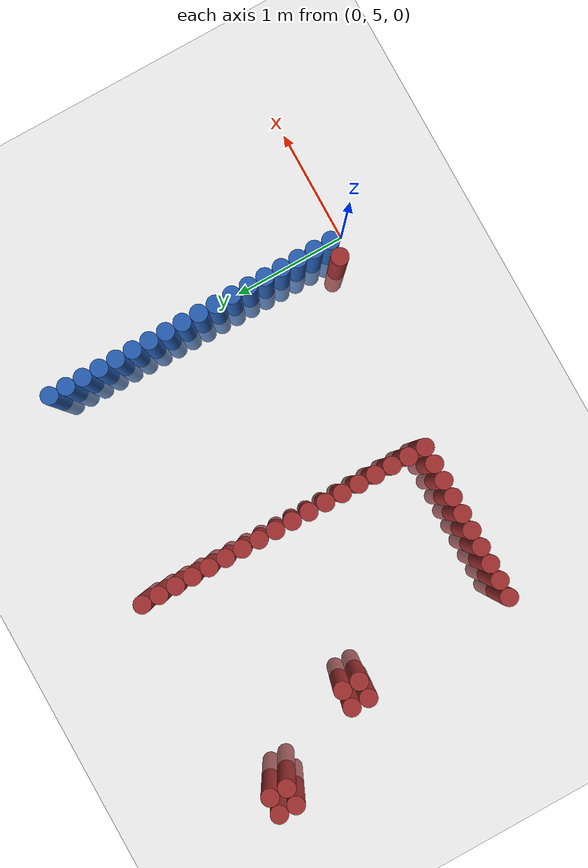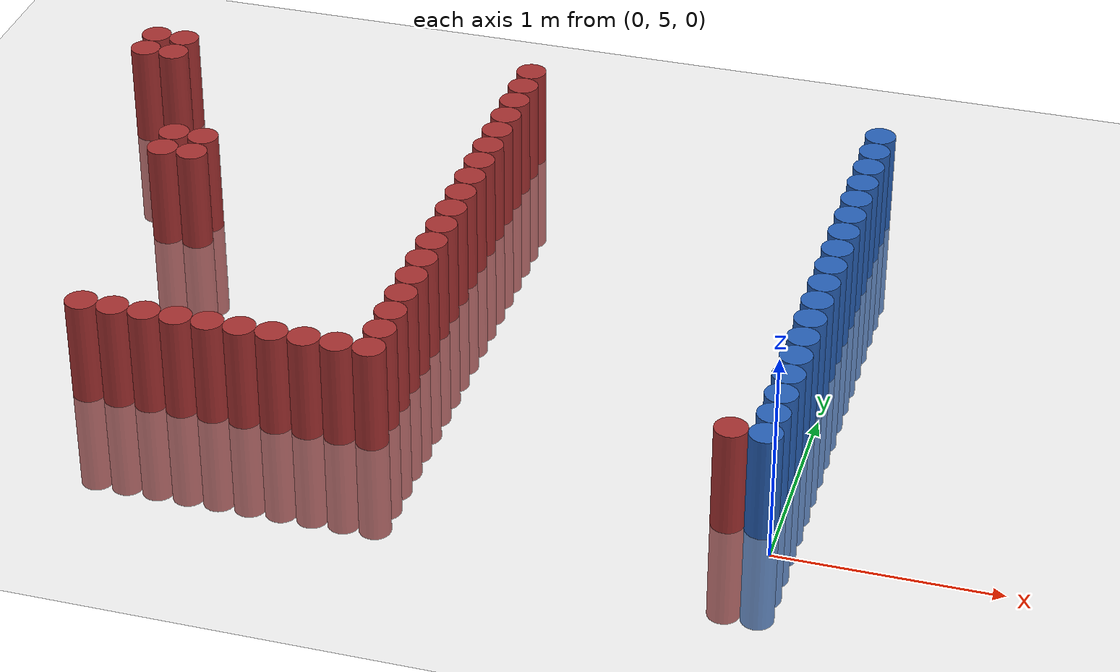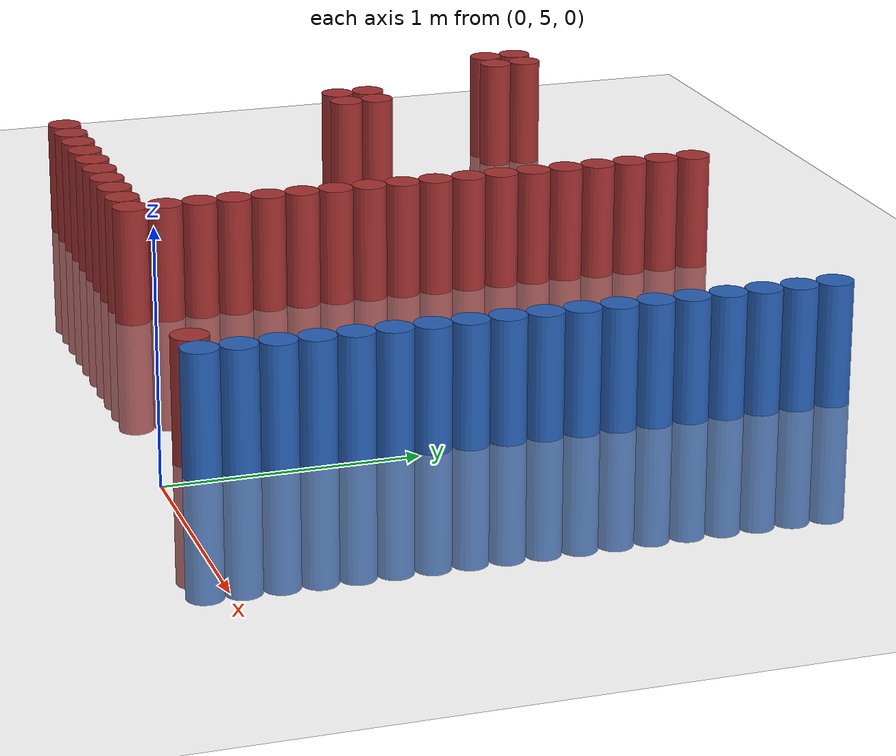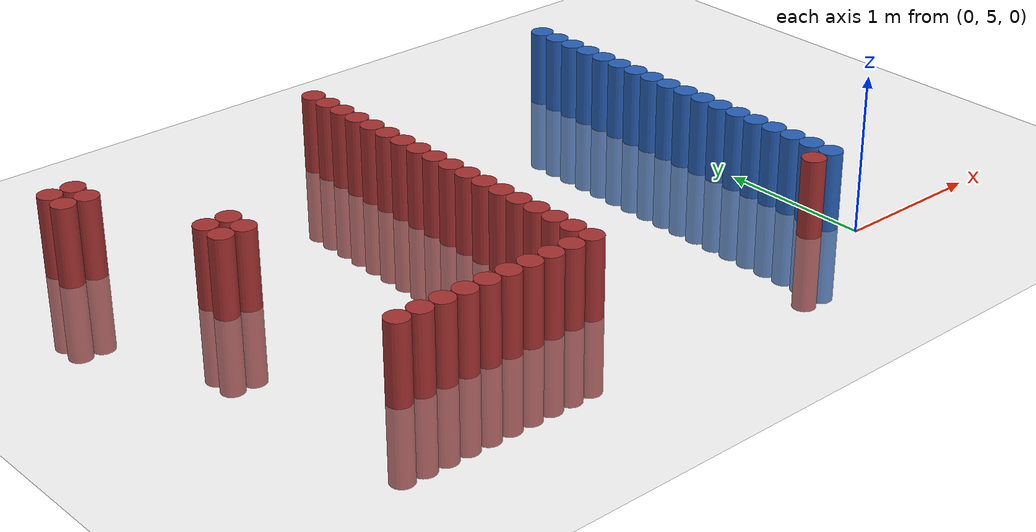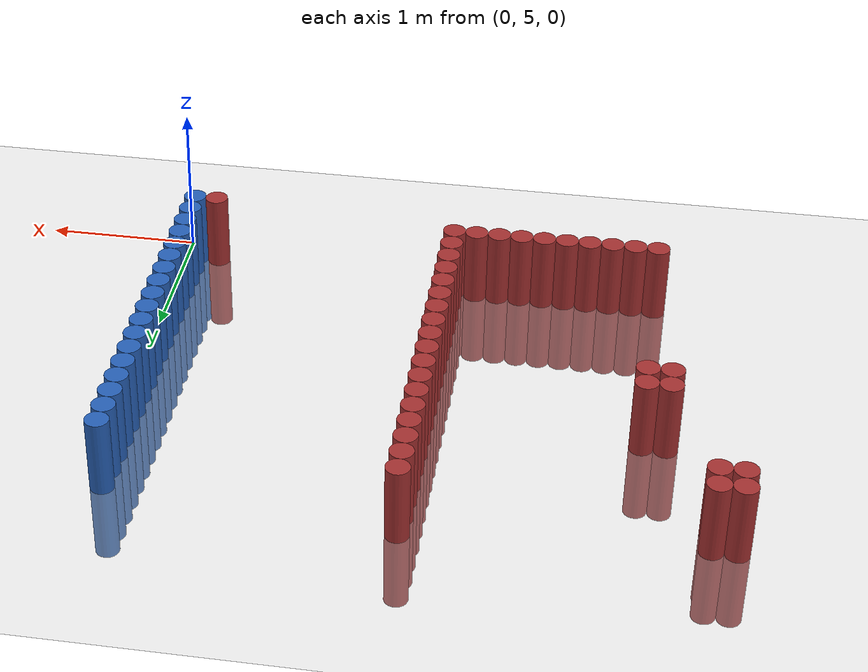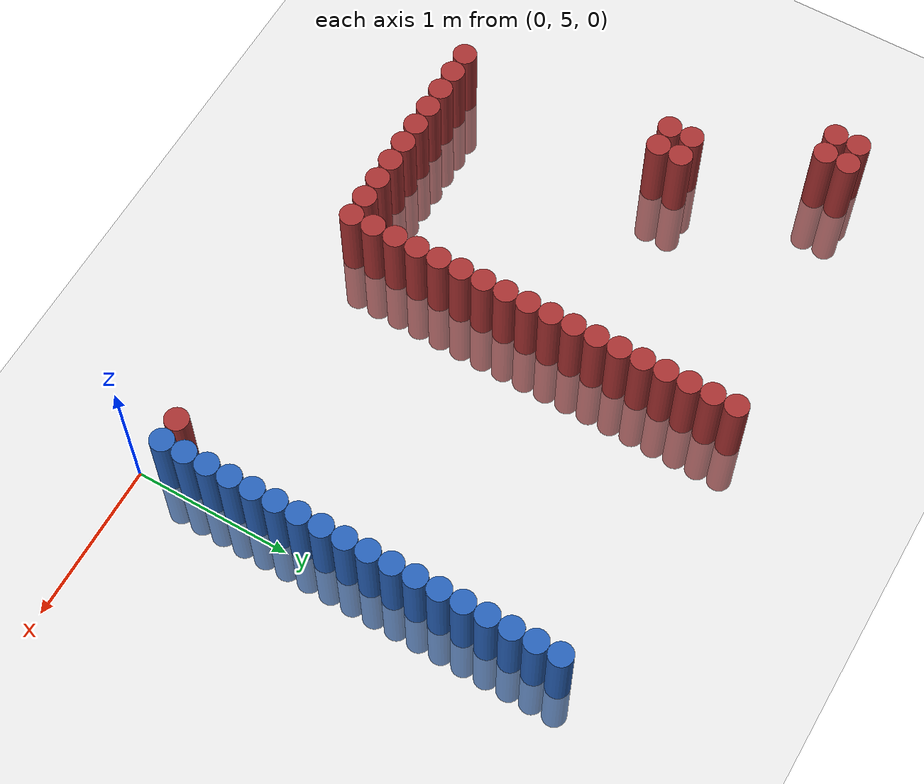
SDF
<sdf version="1.6">
 <world name="default">
  <model name="ground_plane">
   <static>1</static>
   <link name="link">
    <collision name="collision">
     <geometry><plane><normal>0 0 1</normal><size>100 100</size></plane></geometry>
     <surface><friction><ode><mu>100</mu><mu2>50</mu2></ode></friction></surface>
    </collision>
    <visual name="visual">
     <cast_shadows>0</cast_shadows>
     <geometry><plane><normal>0 0 1</normal><size>100 100</size></plane></geometry>
     <material>
      <script><uri>file://media/materials/scripts/gazebo.material</uri><name>Gazebo/Grey</name></script>
     </material>
    </visual>
   </link>
  </model>
  <model name="unit_cylinder_251">
   <static>1</static>
   <pose>-3.825000 7.575000 0.000000 0.000000 0.000000 0.000000</pose>
   <link name="link">
    <inertial>
     <mass>1</mass>
     <inertia><ixx>0.145833</ixx><ixy>0</ixy><ixz>0</ixz><iyy>0.145833</iyy><iyz>0</iyz><izz>0.125</izz></inertia>
    </inertial>
    <collision name="collision">
     <geometry><cylinder><radius>0.075000</radius><length>1</length></cylinder></geometry>
    </collision>
    <visual name="visual">
     <geometry><cylinder><radius>0.075000</radius><length>1</length></cylinder></geometry>
     <material>
      <ambient>0.648000 0.192000 0.192000 1</ambient>
      <diffuse>0.648000 0.192000 0.192000 1</diffuse>
     </material>
     <material>
      <script><name>Gazebo/Grey</name><uri>file://media/materials/scripts/gazebo.material</uri></script>
     </material>
    </visual>
   </link>
  </model>
  <model name="unit_cylinder_252">
   <static>1</static>
   <pose>-3.825000 7.725000 0.000000 0.000000 0.000000 0.000000</pose>
   <link name="link">
    <inertial>
     <mass>1</mass>
     <inertia><ixx>0.145833</ixx><ixy>0</ixy><ixz>0</ixz><iyy>0.145833</iyy><iyz>0</iyz><izz>0.125</izz></inertia>
    </inertial>
    <collision name="collision">
     <geometry><cylinder><radius>0.075000</radius><length>1</length></cylinder></geometry>
    </collision>
    <visual name="visual">
     <geometry><cylinder><radius>0.075000</radius><length>1</length></cylinder></geometry>
     <material>
      <ambient>0.648000 0.192000 0.192000 1</ambient>
      <diffuse>0.648000 0.192000 0.192000 1</diffuse>
     </material>
     <material>
      <script><name>Gazebo/Grey</name><uri>file://media/materials/scripts/gazebo.material</uri></script>
     </material>
    </visual>
   </link>
  </model>
  <model name="unit_cylinder_259">
   <static>1</static>
   <pose>-3.675000 7.575000 0.000000 0.000000 0.000000 0.000000</pose>
   <link name="link">
    <inertial>
     <mass>1</mass>
     <inertia><ixx>0.145833</ixx><ixy>0</ixy><ixz>0</ixz><iyy>0.145833</iyy><iyz>0</iyz><izz>0.125</izz></inertia>
    </inertial>
    <collision name="collision">
     <geometry><cylinder><radius>0.075000</radius><length>1</length></cylinder></geometry>
    </collision>
    <visual name="visual">
     <geometry><cylinder><radius>0.075000</radius><length>1</length></cylinder></geometry>
     <material>
      <ambient>0.648000 0.192000 0.192000 1</ambient>
      <diffuse>0.648000 0.192000 0.192000 1</diffuse>
     </material>
     <material>
      <script><name>Gazebo/Grey</name><uri>file://media/materials/scripts/gazebo.material</uri></script>
     </material>
    </visual>
   </link>
  </model>
  <model name="unit_cylinder_260">
   <static>1</static>
   <pose>-3.675000 7.725000 0.000000 0.000000 0.000000 0.000000</pose>
   <link name="link">
    <inertial>
     <mass>1</mass>
     <inertia><ixx>0.145833</ixx><ixy>0</ixy><ixz>0</ixz><iyy>0.145833</iyy><iyz>0</iyz><izz>0.125</izz></inertia>
    </inertial>
    <collision name="collision">
     <geometry><cylinder><radius>0.075000</radius><length>1</length></cylinder></geometry>
    </collision>
    <visual name="visual">
     <geometry><cylinder><radius>0.075000</radius><length>1</length></cylinder></geometry>
     <material>
      <ambient>0.648000 0.192000 0.192000 1</ambient>
      <diffuse>0.648000 0.192000 0.192000 1</diffuse>
     </material>
     <material>
      <script><name>Gazebo/Grey</name><uri>file://media/materials/scripts/gazebo.material</uri></script>
     </material>
    </visual>
   </link>
  </model>
  <model name="unit_cylinder_269">
   <static>1</static>
   <pose>-3.375000 6.675000 0.000000 0.000000 0.000000 0.000000</pose>
   <link name="link">
    <inertial>
     <mass>1</mass>
     <inertia><ixx>0.145833</ixx><ixy>0</ixy><ixz>0</ixz><iyy>0.145833</iyy><iyz>0</iyz><izz>0.125</izz></inertia>
    </inertial>
    <collision name="collision">
     <geometry><cylinder><radius>0.075000</radius><length>1</length></cylinder></geometry>
    </collision>
    <visual name="visual">
     <geometry><cylinder><radius>0.075000</radius><length>1</length></cylinder></geometry>
     <material>
      <ambient>0.648000 0.192000 0.192000 1</ambient>
      <diffuse>0.648000 0.192000 0.192000 1</diffuse>
     </material>
     <material>
      <script><name>Gazebo/Grey</name><uri>file://media/materials/scripts/gazebo.material</uri></script>
     </material>
    </visual>
   </link>
  </model>
  <model name="unit_cylinder_270">
   <static>1</static>
   <pose>-3.375000 6.825000 0.000000 0.000000 0.000000 0.000000</pose>
   <link name="link">
    <inertial>
     <mass>1</mass>
     <inertia><ixx>0.145833</ixx><ixy>0</ixy><ixz>0</ixz><iyy>0.145833</iyy><iyz>0</iyz><izz>0.125</izz></inertia>
    </inertial>
    <collision name="collision">
     <geometry><cylinder><radius>0.075000</radius><length>1</length></cylinder></geometry>
    </collision>
    <visual name="visual">
     <geometry><cylinder><radius>0.075000</radius><length>1</length></cylinder></geometry>
     <material>
      <ambient>0.648000 0.192000 0.192000 1</ambient>
      <diffuse>0.648000 0.192000 0.192000 1</diffuse>
     </material>
     <material>
      <script><name>Gazebo/Grey</name><uri>file://media/materials/scripts/gazebo.material</uri></script>
     </material>
    </visual>
   </link>
  </model>
  <model name="unit_cylinder_274">
   <static>1</static>
   <pose>-3.225000 5.325000 0.000000 0.000000 0.000000 0.000000</pose>
   <link name="link">
    <inertial>
     <mass>1</mass>
     <inertia><ixx>0.145833</ixx><ixy>0</ixy><ixz>0</ixz><iyy>0.145833</iyy><iyz>0</iyz><izz>0.125</izz></inertia>
    </inertial>
    <collision name="collision">
     <geometry><cylinder><radius>0.075000</radius><length>1</length></cylinder></geometry>
    </collision>
    <visual name="visual">
     <geometry><cylinder><radius>0.075000</radius><length>1</length></cylinder></geometry>
     <material>
      <ambient>0.648000 0.192000 0.192000 1</ambient>
      <diffuse>0.648000 0.192000 0.192000 1</diffuse>
     </material>
     <material>
      <script><name>Gazebo/Grey</name><uri>file://media/materials/scripts/gazebo.material</uri></script>
     </material>
    </visual>
   </link>
  </model>
  <model name="unit_cylinder_275">
   <static>1</static>
   <pose>-3.225000 6.675000 0.000000 0.000000 0.000000 0.000000</pose>
   <link name="link">
    <inertial>
     <mass>1</mass>
     <inertia><ixx>0.145833</ixx><ixy>0</ixy><ixz>0</ixz><iyy>0.145833</iyy><iyz>0</iyz><izz>0.125</izz></inertia>
    </inertial>
    <collision name="collision">
     <geometry><cylinder><radius>0.075000</radius><length>1</length></cylinder></geometry>
    </collision>
    <visual name="visual">
     <geometry><cylinder><radius>0.075000</radius><length>1</length></cylinder></geometry>
     <material>
      <ambient>0.648000 0.192000 0.192000 1</ambient>
      <diffuse>0.648000 0.192000 0.192000 1</diffuse>
     </material>
     <material>
      <script><name>Gazebo/Grey</name><uri>file://media/materials/scripts/gazebo.material</uri></script>
     </material>
    </visual>
   </link>
  </model>
  <model name="unit_cylinder_276">
   <static>1</static>
   <pose>-3.225000 6.825000 0.000000 0.000000 0.000000 0.000000</pose>
   <link name="link">
    <inertial>
     <mass>1</mass>
     <inertia><ixx>0.145833</ixx><ixy>0</ixy><ixz>0</ixz><iyy>0.145833</iyy><iyz>0</iyz><izz>0.125</izz></inertia>
    </inertial>
    <collision name="collision">
     <geometry><cylinder><radius>0.075000</radius><length>1</length></cylinder></geometry>
    </collision>
    <visual name="visual">
     <geometry><cylinder><radius>0.075000</radius><length>1</length></cylinder></geometry>
     <material>
      <ambient>0.648000 0.192000 0.192000 1</ambient>
      <diffuse>0.648000 0.192000 0.192000 1</diffuse>
     </material>
     <material>
      <script><name>Gazebo/Grey</name><uri>file://media/materials/scripts/gazebo.material</uri></script>
     </material>
    </visual>
   </link>
  </model>
  <model name="unit_cylinder_278">
   <static>1</static>
   <pose>-3.075000 5.325000 0.000000 0.000000 0.000000 0.000000</pose>
   <link name="link">
    <inertial>
     <mass>1</mass>
     <inertia><ixx>0.145833</ixx><ixy>0</ixy><ixz>0</ixz><iyy>0.145833</iyy><iyz>0</iyz><izz>0.125</izz></inertia>
    </inertial>
    <collision name="collision">
     <geometry><cylinder><radius>0.075000</radius><length>1</length></cylinder></geometry>
    </collision>
    <visual name="visual">
     <geometry><cylinder><radius>0.075000</radius><length>1</length></cylinder></geometry>
     <material>
      <ambient>0.648000 0.192000 0.192000 1</ambient>
      <diffuse>0.648000 0.192000 0.192000 1</diffuse>
     </material>
     <material>
      <script><name>Gazebo/Grey</name><uri>file://media/materials/scripts/gazebo.material</uri></script>
     </material>
    </visual>
   </link>
  </model>
  <model name="unit_cylinder_280">
   <static>1</static>
   <pose>-2.925000 5.325000 0.000000 0.000000 0.000000 0.000000</pose>
   <link name="link">
    <inertial>
     <mass>1</mass>
     <inertia><ixx>0.145833</ixx><ixy>0</ixy><ixz>0</ixz><iyy>0.145833</iyy><iyz>0</iyz><izz>0.125</izz></inertia>
    </inertial>
    <collision name="collision">
     <geometry><cylinder><radius>0.075000</radius><length>1</length></cylinder></geometry>
    </collision>
    <visual name="visual">
     <geometry><cylinder><radius>0.075000</radius><length>1</length></cylinder></geometry>
     <material>
      <ambient>0.648000 0.192000 0.192000 1</ambient>
      <diffuse>0.648000 0.192000 0.192000 1</diffuse>
     </material>
     <material>
      <script><name>Gazebo/Grey</name><uri>file://media/materials/scripts/gazebo.material</uri></script>
     </material>
    </visual>
   </link>
  </model>
  <model name="unit_cylinder_282">
   <static>1</static>
   <pose>-2.775000 5.325000 0.000000 0.000000 0.000000 0.000000</pose>
   <link name="link">
    <inertial>
     <mass>1</mass>
     <inertia><ixx>0.145833</ixx><ixy>0</ixy><ixz>0</ixz><iyy>0.145833</iyy><iyz>0</iyz><izz>0.125</izz></inertia>
    </inertial>
    <collision name="collision">
     <geometry><cylinder><radius>0.075000</radius><length>1</length></cylinder></geometry>
    </collision>
    <visual name="visual">
     <geometry><cylinder><radius>0.075000</radius><length>1</length></cylinder></geometry>
     <material>
      <ambient>0.648000 0.192000 0.192000 1</ambient>
      <diffuse>0.648000 0.192000 0.192000 1</diffuse>
     </material>
     <material>
      <script><name>Gazebo/Grey</name><uri>file://media/materials/scripts/gazebo.material</uri></script>
     </material>
    </visual>
   </link>
  </model>
  <model name="unit_cylinder_284">
   <static>1</static>
   <pose>-2.625000 5.325000 0.000000 0.000000 0.000000 0.000000</pose>
   <link name="link">
    <inertial>
     <mass>1</mass>
     <inertia><ixx>0.145833</ixx><ixy>0</ixy><ixz>0</ixz><iyy>0.145833</iyy><iyz>0</iyz><izz>0.125</izz></inertia>
    </inertial>
    <collision name="collision">
     <geometry><cylinder><radius>0.075000</radius><length>1</length></cylinder></geometry>
    </collision>
    <visual name="visual">
     <geometry><cylinder><radius>0.075000</radius><length>1</length></cylinder></geometry>
     <material>
      <ambient>0.648000 0.192000 0.192000 1</ambient>
      <diffuse>0.648000 0.192000 0.192000 1</diffuse>
     </material>
     <material>
      <script><name>Gazebo/Grey</name><uri>file://media/materials/scripts/gazebo.material</uri></script>
     </material>
    </visual>
   </link>
  </model>
  <model name="unit_cylinder_286">
   <static>1</static>
   <pose>-2.475000 5.325000 0.000000 0.000000 0.000000 0.000000</pose>
   <link name="link">
    <inertial>
     <mass>1</mass>
     <inertia><ixx>0.145833</ixx><ixy>0</ixy><ixz>0</ixz><iyy>0.145833</iyy><iyz>0</iyz><izz>0.125</izz></inertia>
    </inertial>
    <collision name="collision">
     <geometry><cylinder><radius>0.075000</radius><length>1</length></cylinder></geometry>
    </collision>
    <visual name="visual">
     <geometry><cylinder><radius>0.075000</radius><length>1</length></cylinder></geometry>
     <material>
      <ambient>0.648000 0.192000 0.192000 1</ambient>
      <diffuse>0.648000 0.192000 0.192000 1</diffuse>
     </material>
     <material>
      <script><name>Gazebo/Grey</name><uri>file://media/materials/scripts/gazebo.material</uri></script>
     </material>
    </visual>
   </link>
  </model>
  <model name="unit_cylinder_288">
   <static>1</static>
   <pose>-2.325000 5.325000 0.000000 0.000000 0.000000 0.000000</pose>
   <link name="link">
    <inertial>
     <mass>1</mass>
     <inertia><ixx>0.145833</ixx><ixy>0</ixy><ixz>0</ixz><iyy>0.145833</iyy><iyz>0</iyz><izz>0.125</izz></inertia>
    </inertial>
    <collision name="collision">
     <geometry><cylinder><radius>0.075000</radius><length>1</length></cylinder></geometry>
    </collision>
    <visual name="visual">
     <geometry><cylinder><radius>0.075000</radius><length>1</length></cylinder></geometry>
     <material>
      <ambient>0.648000 0.192000 0.192000 1</ambient>
      <diffuse>0.648000 0.192000 0.192000 1</diffuse>
     </material>
     <material>
      <script><name>Gazebo/Grey</name><uri>file://media/materials/scripts/gazebo.material</uri></script>
     </material>
    </visual>
   </link>
  </model>
  <model name="unit_cylinder_290">
   <static>1</static>
   <pose>-2.175000 5.325000 0.000000 0.000000 0.000000 0.000000</pose>
   <link name="link">
    <inertial>
     <mass>1</mass>
     <inertia><ixx>0.145833</ixx><ixy>0</ixy><ixz>0</ixz><iyy>0.145833</iyy><iyz>0</iyz><izz>0.125</izz></inertia>
    </inertial>
    <collision name="collision">
     <geometry><cylinder><radius>0.075000</radius><length>1</length></cylinder></geometry>
    </collision>
    <visual name="visual">
     <geometry><cylinder><radius>0.075000</radius><length>1</length></cylinder></geometry>
     <material>
      <ambient>0.648000 0.192000 0.192000 1</ambient>
      <diffuse>0.648000 0.192000 0.192000 1</diffuse>
     </material>
     <material>
      <script><name>Gazebo/Grey</name><uri>file://media/materials/scripts/gazebo.material</uri></script>
     </material>
    </visual>
   </link>
  </model>
  <model name="unit_cylinder_292">
   <static>1</static>
   <pose>-2.025000 5.325000 0.000000 0.000000 0.000000 0.000000</pose>
   <link name="link">
    <inertial>
     <mass>1</mass>
     <inertia><ixx>0.145833</ixx><ixy>0</ixy><ixz>0</ixz><iyy>0.145833</iyy><iyz>0</iyz><izz>0.125</izz></inertia>
    </inertial>
    <collision name="collision">
     <geometry><cylinder><radius>0.075000</radius><length>1</length></cylinder></geometry>
    </collision>
    <visual name="visual">
     <geometry><cylinder><radius>0.075000</radius><length>1</length></cylinder></geometry>
     <material>
      <ambient>0.648000 0.192000 0.192000 1</ambient>
      <diffuse>0.648000 0.192000 0.192000 1</diffuse>
     </material>
     <material>
      <script><name>Gazebo/Grey</name><uri>file://media/materials/scripts/gazebo.material</uri></script>
     </material>
    </visual>
   </link>
  </model>
  <model name="unit_cylinder_304">
   <static>1</static>
   <pose>-1.875000 5.325000 0.000000 0.000000 0.000000 0.000000</pose>
   <link name="link">
    <inertial>
     <mass>1</mass>
     <inertia><ixx>0.145833</ixx><ixy>0</ixy><ixz>0</ixz><iyy>0.145833</iyy><iyz>0</iyz><izz>0.125</izz></inertia>
    </inertial>
    <collision name="collision">
     <geometry><cylinder><radius>0.075000</radius><length>1</length></cylinder></geometry>
    </collision>
    <visual name="visual">
     <geometry><cylinder><radius>0.075000</radius><length>1</length></cylinder></geometry>
     <material>
      <ambient>0.648000 0.192000 0.192000 1</ambient>
      <diffuse>0.648000 0.192000 0.192000 1</diffuse>
     </material>
     <material>
      <script><name>Gazebo/Grey</name><uri>file://media/materials/scripts/gazebo.material</uri></script>
     </material>
    </visual>
   </link>
  </model>
  <model name="unit_cylinder_305">
   <static>1</static>
   <pose>-1.875000 5.475000 0.000000 0.000000 0.000000 0.000000</pose>
   <link name="link">
    <inertial>
     <mass>1</mass>
     <inertia><ixx>0.145833</ixx><ixy>0</ixy><ixz>0</ixz><iyy>0.145833</iyy><iyz>0</iyz><izz>0.125</izz></inertia>
    </inertial>
    <collision name="collision">
     <geometry><cylinder><radius>0.075000</radius><length>1</length></cylinder></geometry>
    </collision>
    <visual name="visual">
     <geometry><cylinder><radius>0.075000</radius><length>1</length></cylinder></geometry>
     <material>
      <ambient>0.648000 0.192000 0.192000 1</ambient>
      <diffuse>0.648000 0.192000 0.192000 1</diffuse>
     </material>
     <material>
      <script><name>Gazebo/Grey</name><uri>file://media/materials/scripts/gazebo.material</uri></script>
     </material>
    </visual>
   </link>
  </model>
  <model name="unit_cylinder_306">
   <static>1</static>
   <pose>-1.875000 5.625000 0.000000 0.000000 0.000000 0.000000</pose>
   <link name="link">
    <inertial>
     <mass>1</mass>
     <inertia><ixx>0.145833</ixx><ixy>0</ixy><ixz>0</ixz><iyy>0.145833</iyy><iyz>0</iyz><izz>0.125</izz></inertia>
    </inertial>
    <collision name="collision">
     <geometry><cylinder><radius>0.075000</radius><length>1</length></cylinder></geometry>
    </collision>
    <visual name="visual">
     <geometry><cylinder><radius>0.075000</radius><length>1</length></cylinder></geometry>
     <material>
      <ambient>0.648000 0.192000 0.192000 1</ambient>
      <diffuse>0.648000 0.192000 0.192000 1</diffuse>
     </material>
     <material>
      <script><name>Gazebo/Grey</name><uri>file://media/materials/scripts/gazebo.material</uri></script>
     </material>
    </visual>
   </link>
  </model>
  <model name="unit_cylinder_307">
   <static>1</static>
   <pose>-1.875000 5.775000 0.000000 0.000000 0.000000 0.000000</pose>
   <link name="link">
    <inertial>
     <mass>1</mass>
     <inertia><ixx>0.145833</ixx><ixy>0</ixy><ixz>0</ixz><iyy>0.145833</iyy><iyz>0</iyz><izz>0.125</izz></inertia>
    </inertial>
    <collision name="collision">
     <geometry><cylinder><radius>0.075000</radius><length>1</length></cylinder></geometry>
    </collision>
    <visual name="visual">
     <geometry><cylinder><radius>0.075000</radius><length>1</length></cylinder></geometry>
     <material>
      <ambient>0.648000 0.192000 0.192000 1</ambient>
      <diffuse>0.648000 0.192000 0.192000 1</diffuse>
     </material>
     <material>
      <script><name>Gazebo/Grey</name><uri>file://media/materials/scripts/gazebo.material</uri></script>
     </material>
    </visual>
   </link>
  </model>
  <model name="unit_cylinder_308">
   <static>1</static>
   <pose>-1.875000 5.925000 0.000000 0.000000 0.000000 0.000000</pose>
   <link name="link">
    <inertial>
     <mass>1</mass>
     <inertia><ixx>0.145833</ixx><ixy>0</ixy><ixz>0</ixz><iyy>0.145833</iyy><iyz>0</iyz><izz>0.125</izz></inertia>
    </inertial>
    <collision name="collision">
     <geometry><cylinder><radius>0.075000</radius><length>1</length></cylinder></geometry>
    </collision>
    <visual name="visual">
     <geometry><cylinder><radius>0.075000</radius><length>1</length></cylinder></geometry>
     <material>
      <ambient>0.648000 0.192000 0.192000 1</ambient>
      <diffuse>0.648000 0.192000 0.192000 1</diffuse>
     </material>
     <material>
      <script><name>Gazebo/Grey</name><uri>file://media/materials/scripts/gazebo.material</uri></script>
     </material>
    </visual>
   </link>
  </model>
  <model name="unit_cylinder_309">
   <static>1</static>
   <pose>-1.875000 6.075000 0.000000 0.000000 0.000000 0.000000</pose>
   <link name="link">
    <inertial>
     <mass>1</mass>
     <inertia><ixx>0.145833</ixx><ixy>0</ixy><ixz>0</ixz><iyy>0.145833</iyy><iyz>0</iyz><izz>0.125</izz></inertia>
    </inertial>
    <collision name="collision">
     <geometry><cylinder><radius>0.075000</radius><length>1</length></cylinder></geometry>
    </collision>
    <visual name="visual">
     <geometry><cylinder><radius>0.075000</radius><length>1</length></cylinder></geometry>
     <material>
      <ambient>0.648000 0.192000 0.192000 1</ambient>
      <diffuse>0.648000 0.192000 0.192000 1</diffuse>
     </material>
     <material>
      <script><name>Gazebo/Grey</name><uri>file://media/materials/scripts/gazebo.material</uri></script>
     </material>
    </visual>
   </link>
  </model>
  <model name="unit_cylinder_310">
   <static>1</static>
   <pose>-1.875000 6.225000 0.000000 0.000000 0.000000 0.000000</pose>
   <link name="link">
    <inertial>
     <mass>1</mass>
     <inertia><ixx>0.145833</ixx><ixy>0</ixy><ixz>0</ixz><iyy>0.145833</iyy><iyz>0</iyz><izz>0.125</izz></inertia>
    </inertial>
    <collision name="collision">
     <geometry><cylinder><radius>0.075000</radius><length>1</length></cylinder></geometry>
    </collision>
    <visual name="visual">
     <geometry><cylinder><radius>0.075000</radius><length>1</length></cylinder></geometry>
     <material>
      <ambient>0.648000 0.192000 0.192000 1</ambient>
      <diffuse>0.648000 0.192000 0.192000 1</diffuse>
     </material>
     <material>
      <script><name>Gazebo/Grey</name><uri>file://media/materials/scripts/gazebo.material</uri></script>
     </material>
    </visual>
   </link>
  </model>
  <model name="unit_cylinder_311">
   <static>1</static>
   <pose>-1.875000 6.375000 0.000000 0.000000 0.000000 0.000000</pose>
   <link name="link">
    <inertial>
     <mass>1</mass>
     <inertia><ixx>0.145833</ixx><ixy>0</ixy><ixz>0</ixz><iyy>0.145833</iyy><iyz>0</iyz><izz>0.125</izz></inertia>
    </inertial>
    <collision name="collision">
     <geometry><cylinder><radius>0.075000</radius><length>1</length></cylinder></geometry>
    </collision>
    <visual name="visual">
     <geometry><cylinder><radius>0.075000</radius><length>1</length></cylinder></geometry>
     <material>
      <ambient>0.648000 0.192000 0.192000 1</ambient>
      <diffuse>0.648000 0.192000 0.192000 1</diffuse>
     </material>
     <material>
      <script><name>Gazebo/Grey</name><uri>file://media/materials/scripts/gazebo.material</uri></script>
     </material>
    </visual>
   </link>
  </model>
  <model name="unit_cylinder_312">
   <static>1</static>
   <pose>-1.875000 6.525000 0.000000 0.000000 0.000000 0.000000</pose>
   <link name="link">
    <inertial>
     <mass>1</mass>
     <inertia><ixx>0.145833</ixx><ixy>0</ixy><ixz>0</ixz><iyy>0.145833</iyy><iyz>0</iyz><izz>0.125</izz></inertia>
    </inertial>
    <collision name="collision">
     <geometry><cylinder><radius>0.075000</radius><length>1</length></cylinder></geometry>
    </collision>
    <visual name="visual">
     <geometry><cylinder><radius>0.075000</radius><length>1</length></cylinder></geometry>
     <material>
      <ambient>0.648000 0.192000 0.192000 1</ambient>
      <diffuse>0.648000 0.192000 0.192000 1</diffuse>
     </material>
     <material>
      <script><name>Gazebo/Grey</name><uri>file://media/materials/scripts/gazebo.material</uri></script>
     </material>
    </visual>
   </link>
  </model>
  <model name="unit_cylinder_313">
   <static>1</static>
   <pose>-1.875000 6.675000 0.000000 0.000000 0.000000 0.000000</pose>
   <link name="link">
    <inertial>
     <mass>1</mass>
     <inertia><ixx>0.145833</ixx><ixy>0</ixy><ixz>0</ixz><iyy>0.145833</iyy><iyz>0</iyz><izz>0.125</izz></inertia>
    </inertial>
    <collision name="collision">
     <geometry><cylinder><radius>0.075000</radius><length>1</length></cylinder></geometry>
    </collision>
    <visual name="visual">
     <geometry><cylinder><radius>0.075000</radius><length>1</length></cylinder></geometry>
     <material>
      <ambient>0.648000 0.192000 0.192000 1</ambient>
      <diffuse>0.648000 0.192000 0.192000 1</diffuse>
     </material>
     <material>
      <script><name>Gazebo/Grey</name><uri>file://media/materials/scripts/gazebo.material</uri></script>
     </material>
    </visual>
   </link>
  </model>
  <model name="unit_cylinder_314">
   <static>1</static>
   <pose>-1.875000 6.825000 0.000000 0.000000 0.000000 0.000000</pose>
   <link name="link">
    <inertial>
     <mass>1</mass>
     <inertia><ixx>0.145833</ixx><ixy>0</ixy><ixz>0</ixz><iyy>0.145833</iyy><iyz>0</iyz><izz>0.125</izz></inertia>
    </inertial>
    <collision name="collision">
     <geometry><cylinder><radius>0.075000</radius><length>1</length></cylinder></geometry>
    </collision>
    <visual name="visual">
     <geometry><cylinder><radius>0.075000</radius><length>1</length></cylinder></geometry>
     <material>
      <ambient>0.648000 0.192000 0.192000 1</ambient>
      <diffuse>0.648000 0.192000 0.192000 1</diffuse>
     </material>
     <material>
      <script><name>Gazebo/Grey</name><uri>file://media/materials/scripts/gazebo.material</uri></script>
     </material>
    </visual>
   </link>
  </model>
  <model name="unit_cylinder_315">
   <static>1</static>
   <pose>-1.875000 6.975000 0.000000 0.000000 0.000000 0.000000</pose>
   <link name="link">
    <inertial>
     <mass>1</mass>
     <inertia><ixx>0.145833</ixx><ixy>0</ixy><ixz>0</ixz><iyy>0.145833</iyy><iyz>0</iyz><izz>0.125</izz></inertia>
    </inertial>
    <collision name="collision">
     <geometry><cylinder><radius>0.075000</radius><length>1</length></cylinder></geometry>
    </collision>
    <visual name="visual">
     <geometry><cylinder><radius>0.075000</radius><length>1</length></cylinder></geometry>
     <material>
      <ambient>0.648000 0.192000 0.192000 1</ambient>
      <diffuse>0.648000 0.192000 0.192000 1</diffuse>
     </material>
     <material>
      <script><name>Gazebo/Grey</name><uri>file://media/materials/scripts/gazebo.material</uri></script>
     </material>
    </visual>
   </link>
  </model>
  <model name="unit_cylinder_316">
   <static>1</static>
   <pose>-1.875000 7.125000 0.000000 0.000000 0.000000 0.000000</pose>
   <link name="link">
    <inertial>
     <mass>1</mass>
     <inertia><ixx>0.145833</ixx><ixy>0</ixy><ixz>0</ixz><iyy>0.145833</iyy><iyz>0</iyz><izz>0.125</izz></inertia>
    </inertial>
    <collision name="collision">
     <geometry><cylinder><radius>0.075000</radius><length>1</length></cylinder></geometry>
    </collision>
    <visual name="visual">
     <geometry><cylinder><radius>0.075000</radius><length>1</length></cylinder></geometry>
     <material>
      <ambient>0.648000 0.192000 0.192000 1</ambient>
      <diffuse>0.648000 0.192000 0.192000 1</diffuse>
     </material>
     <material>
      <script><name>Gazebo/Grey</name><uri>file://media/materials/scripts/gazebo.material</uri></script>
     </material>
    </visual>
   </link>
  </model>
  <model name="unit_cylinder_317">
   <static>1</static>
   <pose>-1.875000 7.275000 0.000000 0.000000 0.000000 0.000000</pose>
   <link name="link">
    <inertial>
     <mass>1</mass>
     <inertia><ixx>0.145833</ixx><ixy>0</ixy><ixz>0</ixz><iyy>0.145833</iyy><iyz>0</iyz><izz>0.125</izz></inertia>
    </inertial>
    <collision name="collision">
     <geometry><cylinder><radius>0.075000</radius><length>1</length></cylinder></geometry>
    </collision>
    <visual name="visual">
     <geometry><cylinder><radius>0.075000</radius><length>1</length></cylinder></geometry>
     <material>
      <ambient>0.648000 0.192000 0.192000 1</ambient>
      <diffuse>0.648000 0.192000 0.192000 1</diffuse>
     </material>
     <material>
      <script><name>Gazebo/Grey</name><uri>file://media/materials/scripts/gazebo.material</uri></script>
     </material>
    </visual>
   </link>
  </model>
  <model name="unit_cylinder_318">
   <static>1</static>
   <pose>-1.875000 7.425000 0.000000 0.000000 0.000000 0.000000</pose>
   <link name="link">
    <inertial>
     <mass>1</mass>
     <inertia><ixx>0.145833</ixx><ixy>0</ixy><ixz>0</ixz><iyy>0.145833</iyy><iyz>0</iyz><izz>0.125</izz></inertia>
    </inertial>
    <collision name="collision">
     <geometry><cylinder><radius>0.075000</radius><length>1</length></cylinder></geometry>
    </collision>
    <visual name="visual">
     <geometry><cylinder><radius>0.075000</radius><length>1</length></cylinder></geometry>
     <material>
      <ambient>0.648000 0.192000 0.192000 1</ambient>
      <diffuse>0.648000 0.192000 0.192000 1</diffuse>
     </material>
     <material>
      <script><name>Gazebo/Grey</name><uri>file://media/materials/scripts/gazebo.material</uri></script>
     </material>
    </visual>
   </link>
  </model>
  <model name="unit_cylinder_319">
   <static>1</static>
   <pose>-1.875000 7.575000 0.000000 0.000000 0.000000 0.000000</pose>
   <link name="link">
    <inertial>
     <mass>1</mass>
     <inertia><ixx>0.145833</ixx><ixy>0</ixy><ixz>0</ixz><iyy>0.145833</iyy><iyz>0</iyz><izz>0.125</izz></inertia>
    </inertial>
    <collision name="collision">
     <geometry><cylinder><radius>0.075000</radius><length>1</length></cylinder></geometry>
    </collision>
    <visual name="visual">
     <geometry><cylinder><radius>0.075000</radius><length>1</length></cylinder></geometry>
     <material>
      <ambient>0.648000 0.192000 0.192000 1</ambient>
      <diffuse>0.648000 0.192000 0.192000 1</diffuse>
     </material>
     <material>
      <script><name>Gazebo/Grey</name><uri>file://media/materials/scripts/gazebo.material</uri></script>
     </material>
    </visual>
   </link>
  </model>
  <model name="unit_cylinder_320">
   <static>1</static>
   <pose>-1.875000 7.725000 0.000000 0.000000 0.000000 0.000000</pose>
   <link name="link">
    <inertial>
     <mass>1</mass>
     <inertia><ixx>0.145833</ixx><ixy>0</ixy><ixz>0</ixz><iyy>0.145833</iyy><iyz>0</iyz><izz>0.125</izz></inertia>
    </inertial>
    <collision name="collision">
     <geometry><cylinder><radius>0.075000</radius><length>1</length></cylinder></geometry>
    </collision>
    <visual name="visual">
     <geometry><cylinder><radius>0.075000</radius><length>1</length></cylinder></geometry>
     <material>
      <ambient>0.648000 0.192000 0.192000 1</ambient>
      <diffuse>0.648000 0.192000 0.192000 1</diffuse>
     </material>
     <material>
      <script><name>Gazebo/Grey</name><uri>file://media/materials/scripts/gazebo.material</uri></script>
     </material>
    </visual>
   </link>
  </model>
  <model name="unit_cylinder_321">
   <static>1</static>
   <pose>-1.875000 7.875000 0.000000 0.000000 0.000000 0.000000</pose>
   <link name="link">
    <inertial>
     <mass>1</mass>
     <inertia><ixx>0.145833</ixx><ixy>0</ixy><ixz>0</ixz><iyy>0.145833</iyy><iyz>0</iyz><izz>0.125</izz></inertia>
    </inertial>
    <collision name="collision">
     <geometry><cylinder><radius>0.075000</radius><length>1</length></cylinder></geometry>
    </collision>
    <visual name="visual">
     <geometry><cylinder><radius>0.075000</radius><length>1</length></cylinder></geometry>
     <material>
      <ambient>0.648000 0.192000 0.192000 1</ambient>
      <diffuse>0.648000 0.192000 0.192000 1</diffuse>
     </material>
     <material>
      <script><name>Gazebo/Grey</name><uri>file://media/materials/scripts/gazebo.material</uri></script>
     </material>
    </visual>
   </link>
  </model>
  <model name="unit_cylinder_345">
   <static>1</static>
   <pose>-0.225000 5.175000 0.000000 0.000000 0.000000 0.000000</pose>
   <link name="link">
    <inertial>
     <mass>1</mass>
     <inertia><ixx>0.145833</ixx><ixy>0</ixy><ixz>0</ixz><iyy>0.145833</iyy><iyz>0</iyz><izz>0.125</izz></inertia>
    </inertial>
    <collision name="collision">
     <geometry><cylinder><radius>0.075000</radius><length>1</length></cylinder></geometry>
    </collision>
    <visual name="visual">
     <geometry><cylinder><radius>0.075000</radius><length>1</length></cylinder></geometry>
     <material>
      <ambient>0.648000 0.192000 0.192000 1</ambient>
      <diffuse>0.648000 0.192000 0.192000 1</diffuse>
     </material>
     <material>
      <script><name>Gazebo/Grey</name><uri>file://media/materials/scripts/gazebo.material</uri></script>
     </material>
    </visual>
   </link>
  </model>
  <model name="unit_cylinder_347">
   <static>1</static>
   <pose>-0.075000 5.175000 0.000000 0.000000 0.000000 0.000000</pose>
   <link name="link">
    <inertial>
     <mass>1</mass>
     <inertia><ixx>0.145833</ixx><ixy>0</ixy><ixz>0</ixz><iyy>0.145833</iyy><iyz>0</iyz><izz>0.125</izz></inertia>
    </inertial>
    <collision name="collision">
     <geometry><cylinder><radius>0.075000</radius><length>1</length></cylinder></geometry>
    </collision>
    <visual name="visual">
     <geometry><cylinder><radius>0.075000</radius><length>1</length></cylinder></geometry>
     <material>
      <ambient>0.152000 0.379000 0.720000 1</ambient>
      <diffuse>0.152000 0.379000 0.720000 1</diffuse>
     </material>
     <material>
      <script><name>Gazebo/Grey</name><uri>file://media/materials/scripts/gazebo.material</uri></script>
     </material>
    </visual>
   </link>
  </model>
  <model name="unit_cylinder_348">
   <static>1</static>
   <pose>-0.075000 5.325000 0.000000 0.000000 0.000000 0.000000</pose>
   <link name="link">
    <inertial>
     <mass>1</mass>
     <inertia><ixx>0.145833</ixx><ixy>0</ixy><ixz>0</ixz><iyy>0.145833</iyy><iyz>0</iyz><izz>0.125</izz></inertia>
    </inertial>
    <collision name="collision">
     <geometry><cylinder><radius>0.075000</radius><length>1</length></cylinder></geometry>
    </collision>
    <visual name="visual">
     <geometry><cylinder><radius>0.075000</radius><length>1</length></cylinder></geometry>
     <material>
      <ambient>0.152000 0.379000 0.720000 1</ambient>
      <diffuse>0.152000 0.379000 0.720000 1</diffuse>
     </material>
     <material>
      <script><name>Gazebo/Grey</name><uri>file://media/materials/scripts/gazebo.material</uri></script>
     </material>
    </visual>
   </link>
  </model>
  <model name="unit_cylinder_349">
   <static>1</static>
   <pose>-0.075000 5.475000 0.000000 0.000000 0.000000 0.000000</pose>
   <link name="link">
    <inertial>
     <mass>1</mass>
     <inertia><ixx>0.145833</ixx><ixy>0</ixy><ixz>0</ixz><iyy>0.145833</iyy><iyz>0</iyz><izz>0.125</izz></inertia>
    </inertial>
    <collision name="collision">
     <geometry><cylinder><radius>0.075000</radius><length>1</length></cylinder></geometry>
    </collision>
    <visual name="visual">
     <geometry><cylinder><radius>0.075000</radius><length>1</length></cylinder></geometry>
     <material>
      <ambient>0.152000 0.379000 0.720000 1</ambient>
      <diffuse>0.152000 0.379000 0.720000 1</diffuse>
     </material>
     <material>
      <script><name>Gazebo/Grey</name><uri>file://media/materials/scripts/gazebo.material</uri></script>
     </material>
    </visual>
   </link>
  </model>
  <model name="unit_cylinder_350">
   <static>1</static>
   <pose>-0.075000 5.625000 0.000000 0.000000 0.000000 0.000000</pose>
   <link name="link">
    <inertial>
     <mass>1</mass>
     <inertia><ixx>0.145833</ixx><ixy>0</ixy><ixz>0</ixz><iyy>0.145833</iyy><iyz>0</iyz><izz>0.125</izz></inertia>
    </inertial>
    <collision name="collision">
     <geometry><cylinder><radius>0.075000</radius><length>1</length></cylinder></geometry>
    </collision>
    <visual name="visual">
     <geometry><cylinder><radius>0.075000</radius><length>1</length></cylinder></geometry>
     <material>
      <ambient>0.152000 0.379000 0.720000 1</ambient>
      <diffuse>0.152000 0.379000 0.720000 1</diffuse>
     </material>
     <material>
      <script><name>Gazebo/Grey</name><uri>file://media/materials/scripts/gazebo.material</uri></script>
     </material>
    </visual>
   </link>
  </model>
  <model name="unit_cylinder_351">
   <static>1</static>
   <pose>-0.075000 5.775000 0.000000 0.000000 0.000000 0.000000</pose>
   <link name="link">
    <inertial>
     <mass>1</mass>
     <inertia><ixx>0.145833</ixx><ixy>0</ixy><ixz>0</ixz><iyy>0.145833</iyy><iyz>0</iyz><izz>0.125</izz></inertia>
    </inertial>
    <collision name="collision">
     <geometry><cylinder><radius>0.075000</radius><length>1</length></cylinder></geometry>
    </collision>
    <visual name="visual">
     <geometry><cylinder><radius>0.075000</radius><length>1</length></cylinder></geometry>
     <material>
      <ambient>0.152000 0.379000 0.720000 1</ambient>
      <diffuse>0.152000 0.379000 0.720000 1</diffuse>
     </material>
     <material>
      <script><name>Gazebo/Grey</name><uri>file://media/materials/scripts/gazebo.material</uri></script>
     </material>
    </visual>
   </link>
  </model>
  <model name="unit_cylinder_352">
   <static>1</static>
   <pose>-0.075000 5.925000 0.000000 0.000000 0.000000 0.000000</pose>
   <link name="link">
    <inertial>
     <mass>1</mass>
     <inertia><ixx>0.145833</ixx><ixy>0</ixy><ixz>0</ixz><iyy>0.145833</iyy><iyz>0</iyz><izz>0.125</izz></inertia>
    </inertial>
    <collision name="collision">
     <geometry><cylinder><radius>0.075000</radius><length>1</length></cylinder></geometry>
    </collision>
    <visual name="visual">
     <geometry><cylinder><radius>0.075000</radius><length>1</length></cylinder></geometry>
     <material>
      <ambient>0.152000 0.379000 0.720000 1</ambient>
      <diffuse>0.152000 0.379000 0.720000 1</diffuse>
     </material>
     <material>
      <script><name>Gazebo/Grey</name><uri>file://media/materials/scripts/gazebo.material</uri></script>
     </material>
    </visual>
   </link>
  </model>
  <model name="unit_cylinder_353">
   <static>1</static>
   <pose>-0.075000 6.075000 0.000000 0.000000 0.000000 0.000000</pose>
   <link name="link">
    <inertial>
     <mass>1</mass>
     <inertia><ixx>0.145833</ixx><ixy>0</ixy><ixz>0</ixz><iyy>0.145833</iyy><iyz>0</iyz><izz>0.125</izz></inertia>
    </inertial>
    <collision name="collision">
     <geometry><cylinder><radius>0.075000</radius><length>1</length></cylinder></geometry>
    </collision>
    <visual name="visual">
     <geometry><cylinder><radius>0.075000</radius><length>1</length></cylinder></geometry>
     <material>
      <ambient>0.152000 0.379000 0.720000 1</ambient>
      <diffuse>0.152000 0.379000 0.720000 1</diffuse>
     </material>
     <material>
      <script><name>Gazebo/Grey</name><uri>file://media/materials/scripts/gazebo.material</uri></script>
     </material>
    </visual>
   </link>
  </model>
  <model name="unit_cylinder_354">
   <static>1</static>
   <pose>-0.075000 6.225000 0.000000 0.000000 0.000000 0.000000</pose>
   <link name="link">
    <inertial>
     <mass>1</mass>
     <inertia><ixx>0.145833</ixx><ixy>0</ixy><ixz>0</ixz><iyy>0.145833</iyy><iyz>0</iyz><izz>0.125</izz></inertia>
    </inertial>
    <collision name="collision">
     <geometry><cylinder><radius>0.075000</radius><length>1</length></cylinder></geometry>
    </collision>
    <visual name="visual">
     <geometry><cylinder><radius>0.075000</radius><length>1</length></cylinder></geometry>
     <material>
      <ambient>0.152000 0.379000 0.720000 1</ambient>
      <diffuse>0.152000 0.379000 0.720000 1</diffuse>
     </material>
     <material>
      <script><name>Gazebo/Grey</name><uri>file://media/materials/scripts/gazebo.material</uri></script>
     </material>
    </visual>
   </link>
  </model>
  <model name="unit_cylinder_355">
   <static>1</static>
   <pose>-0.075000 6.375000 0.000000 0.000000 0.000000 0.000000</pose>
   <link name="link">
    <inertial>
     <mass>1</mass>
     <inertia><ixx>0.145833</ixx><ixy>0</ixy><ixz>0</ixz><iyy>0.145833</iyy><iyz>0</iyz><izz>0.125</izz></inertia>
    </inertial>
    <collision name="collision">
     <geometry><cylinder><radius>0.075000</radius><length>1</length></cylinder></geometry>
    </collision>
    <visual name="visual">
     <geometry><cylinder><radius>0.075000</radius><length>1</length></cylinder></geometry>
     <material>
      <ambient>0.152000 0.379000 0.720000 1</ambient>
      <diffuse>0.152000 0.379000 0.720000 1</diffuse>
     </material>
     <material>
      <script><name>Gazebo/Grey</name><uri>file://media/materials/scripts/gazebo.material</uri></script>
     </material>
    </visual>
   </link>
  </model>
  <model name="unit_cylinder_356">
   <static>1</static>
   <pose>-0.075000 6.525000 0.000000 0.000000 0.000000 0.000000</pose>
   <link name="link">
    <inertial>
     <mass>1</mass>
     <inertia><ixx>0.145833</ixx><ixy>0</ixy><ixz>0</ixz><iyy>0.145833</iyy><iyz>0</iyz><izz>0.125</izz></inertia>
    </inertial>
    <collision name="collision">
     <geometry><cylinder><radius>0.075000</radius><length>1</length></cylinder></geometry>
    </collision>
    <visual name="visual">
     <geometry><cylinder><radius>0.075000</radius><length>1</length></cylinder></geometry>
     <material>
      <ambient>0.152000 0.379000 0.720000 1</ambient>
      <diffuse>0.152000 0.379000 0.720000 1</diffuse>
     </material>
     <material>
      <script><name>Gazebo/Grey</name><uri>file://media/materials/scripts/gazebo.material</uri></script>
     </material>
    </visual>
   </link>
  </model>
  <model name="unit_cylinder_357">
   <static>1</static>
   <pose>-0.075000 6.675000 0.000000 0.000000 0.000000 0.000000</pose>
   <link name="link">
    <inertial>
     <mass>1</mass>
     <inertia><ixx>0.145833</ixx><ixy>0</ixy><ixz>0</ixz><iyy>0.145833</iyy><iyz>0</iyz><izz>0.125</izz></inertia>
    </inertial>
    <collision name="collision">
     <geometry><cylinder><radius>0.075000</radius><length>1</length></cylinder></geometry>
    </collision>
    <visual name="visual">
     <geometry><cylinder><radius>0.075000</radius><length>1</length></cylinder></geometry>
     <material>
      <ambient>0.152000 0.379000 0.720000 1</ambient>
      <diffuse>0.152000 0.379000 0.720000 1</diffuse>
     </material>
     <material>
      <script><name>Gazebo/Grey</name><uri>file://media/materials/scripts/gazebo.material</uri></script>
     </material>
    </visual>
   </link>
  </model>
  <model name="unit_cylinder_358">
   <static>1</static>
   <pose>-0.075000 6.825000 0.000000 0.000000 0.000000 0.000000</pose>
   <link name="link">
    <inertial>
     <mass>1</mass>
     <inertia><ixx>0.145833</ixx><ixy>0</ixy><ixz>0</ixz><iyy>0.145833</iyy><iyz>0</iyz><izz>0.125</izz></inertia>
    </inertial>
    <collision name="collision">
     <geometry><cylinder><radius>0.075000</radius><length>1</length></cylinder></geometry>
    </collision>
    <visual name="visual">
     <geometry><cylinder><radius>0.075000</radius><length>1</length></cylinder></geometry>
     <material>
      <ambient>0.152000 0.379000 0.720000 1</ambient>
      <diffuse>0.152000 0.379000 0.720000 1</diffuse>
     </material>
     <material>
      <script><name>Gazebo/Grey</name><uri>file://media/materials/scripts/gazebo.material</uri></script>
     </material>
    </visual>
   </link>
  </model>
  <model name="unit_cylinder_359">
   <static>1</static>
   <pose>-0.075000 6.975000 0.000000 0.000000 0.000000 0.000000</pose>
   <link name="link">
    <inertial>
     <mass>1</mass>
     <inertia><ixx>0.145833</ixx><ixy>0</ixy><ixz>0</ixz><iyy>0.145833</iyy><iyz>0</iyz><izz>0.125</izz></inertia>
    </inertial>
    <collision name="collision">
     <geometry><cylinder><radius>0.075000</radius><length>1</length></cylinder></geometry>
    </collision>
    <visual name="visual">
     <geometry><cylinder><radius>0.075000</radius><length>1</length></cylinder></geometry>
     <material>
      <ambient>0.152000 0.379000 0.720000 1</ambient>
      <diffuse>0.152000 0.379000 0.720000 1</diffuse>
     </material>
     <material>
      <script><name>Gazebo/Grey</name><uri>file://media/materials/scripts/gazebo.material</uri></script>
     </material>
    </visual>
   </link>
  </model>
  <model name="unit_cylinder_360">
   <static>1</static>
   <pose>-0.075000 7.125000 0.000000 0.000000 0.000000 0.000000</pose>
   <link name="link">
    <inertial>
     <mass>1</mass>
     <inertia><ixx>0.145833</ixx><ixy>0</ixy><ixz>0</ixz><iyy>0.145833</iyy><iyz>0</iyz><izz>0.125</izz></inertia>
    </inertial>
    <collision name="collision">
     <geometry><cylinder><radius>0.075000</radius><length>1</length></cylinder></geometry>
    </collision>
    <visual name="visual">
     <geometry><cylinder><radius>0.075000</radius><length>1</length></cylinder></geometry>
     <material>
      <ambient>0.152000 0.379000 0.720000 1</ambient>
      <diffuse>0.152000 0.379000 0.720000 1</diffuse>
     </material>
     <material>
      <script><name>Gazebo/Grey</name><uri>file://media/materials/scripts/gazebo.material</uri></script>
     </material>
    </visual>
   </link>
  </model>
  <model name="unit_cylinder_361">
   <static>1</static>
   <pose>-0.075000 7.275000 0.000000 0.000000 0.000000 0.000000</pose>
   <link name="link">
    <inertial>
     <mass>1</mass>
     <inertia><ixx>0.145833</ixx><ixy>0</ixy><ixz>0</ixz><iyy>0.145833</iyy><iyz>0</iyz><izz>0.125</izz></inertia>
    </inertial>
    <collision name="collision">
     <geometry><cylinder><radius>0.075000</radius><length>1</length></cylinder></geometry>
    </collision>
    <visual name="visual">
     <geometry><cylinder><radius>0.075000</radius><length>1</length></cylinder></geometry>
     <material>
      <ambient>0.152000 0.379000 0.720000 1</ambient>
      <diffuse>0.152000 0.379000 0.720000 1</diffuse>
     </material>
     <material>
      <script><name>Gazebo/Grey</name><uri>file://media/materials/scripts/gazebo.material</uri></script>
     </material>
    </visual>
   </link>
  </model>
  <model name="unit_cylinder_362">
   <static>1</static>
   <pose>-0.075000 7.425000 0.000000 0.000000 0.000000 0.000000</pose>
   <link name="link">
    <inertial>
     <mass>1</mass>
     <inertia><ixx>0.145833</ixx><ixy>0</ixy><ixz>0</ixz><iyy>0.145833</iyy><iyz>0</iyz><izz>0.125</izz></inertia>
    </inertial>
    <collision name="collision">
     <geometry><cylinder><radius>0.075000</radius><length>1</length></cylinder></geometry>
    </collision>
    <visual name="visual">
     <geometry><cylinder><radius>0.075000</radius><length>1</length></cylinder></geometry>
     <material>
      <ambient>0.152000 0.379000 0.720000 1</ambient>
      <diffuse>0.152000 0.379000 0.720000 1</diffuse>
     </material>
     <material>
      <script><name>Gazebo/Grey</name><uri>file://media/materials/scripts/gazebo.material</uri></script>
     </material>
    </visual>
   </link>
  </model>
  <model name="unit_cylinder_363">
   <static>1</static>
   <pose>-0.075000 7.575000 0.000000 0.000000 0.000000 0.000000</pose>
   <link name="link">
    <inertial>
     <mass>1</mass>
     <inertia><ixx>0.145833</ixx><ixy>0</ixy><ixz>0</ixz><iyy>0.145833</iyy><iyz>0</iyz><izz>0.125</izz></inertia>
    </inertial>
    <collision name="collision">
     <geometry><cylinder><radius>0.075000</radius><length>1</length></cylinder></geometry>
    </collision>
    <visual name="visual">
     <geometry><cylinder><radius>0.075000</radius><length>1</length></cylinder></geometry>
     <material>
      <ambient>0.152000 0.379000 0.720000 1</ambient>
      <diffuse>0.152000 0.379000 0.720000 1</diffuse>
     </material>
     <material>
      <script><name>Gazebo/Grey</name><uri>file://media/materials/scripts/gazebo.material</uri></script>
     </material>
    </visual>
   </link>
  </model>
  <model name="unit_cylinder_364">
   <static>1</static>
   <pose>-0.075000 7.725000 0.000000 0.000000 0.000000 0.000000</pose>
   <link name="link">
    <inertial>
     <mass>1</mass>
     <inertia><ixx>0.145833</ixx><ixy>0</ixy><ixz>0</ixz><iyy>0.145833</iyy><iyz>0</iyz><izz>0.125</izz></inertia>
    </inertial>
    <collision name="collision">
     <geometry><cylinder><radius>0.075000</radius><length>1</length></cylinder></geometry>
    </collision>
    <visual name="visual">
     <geometry><cylinder><radius>0.075000</radius><length>1</length></cylinder></geometry>
     <material>
      <ambient>0.152000 0.379000 0.720000 1</ambient>
      <diffuse>0.152000 0.379000 0.720000 1</diffuse>
     </material>
     <material>
      <script><name>Gazebo/Grey</name><uri>file://media/materials/scripts/gazebo.material</uri></script>
     </material>
    </visual>
   </link>
  </model>
 </world>
</sdf>
